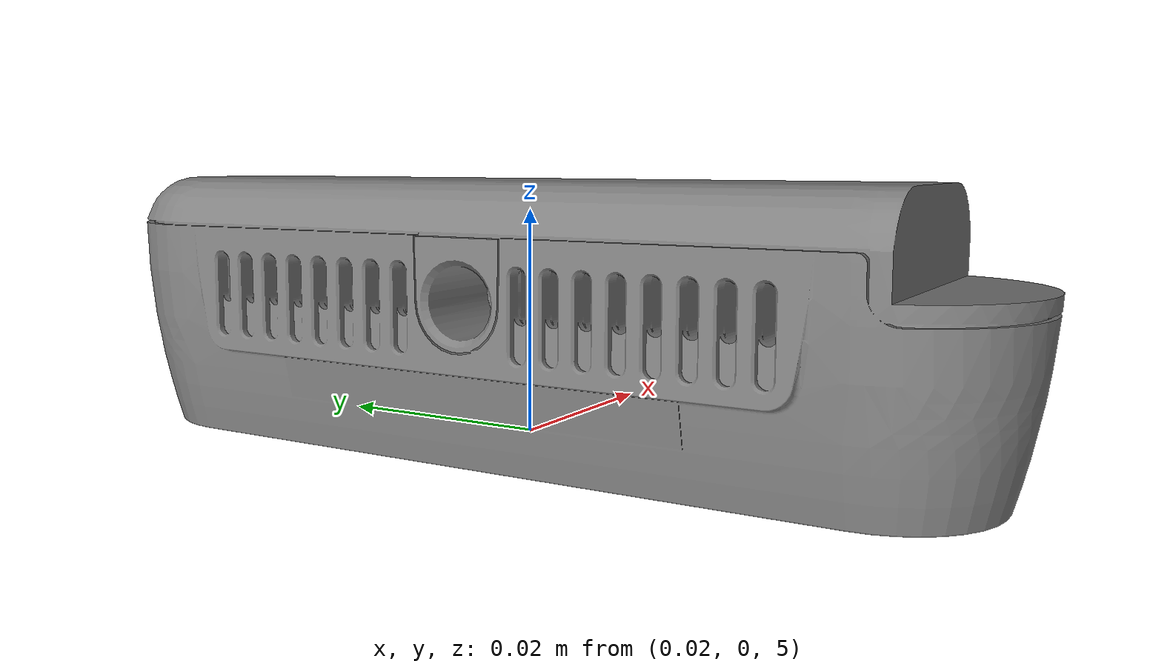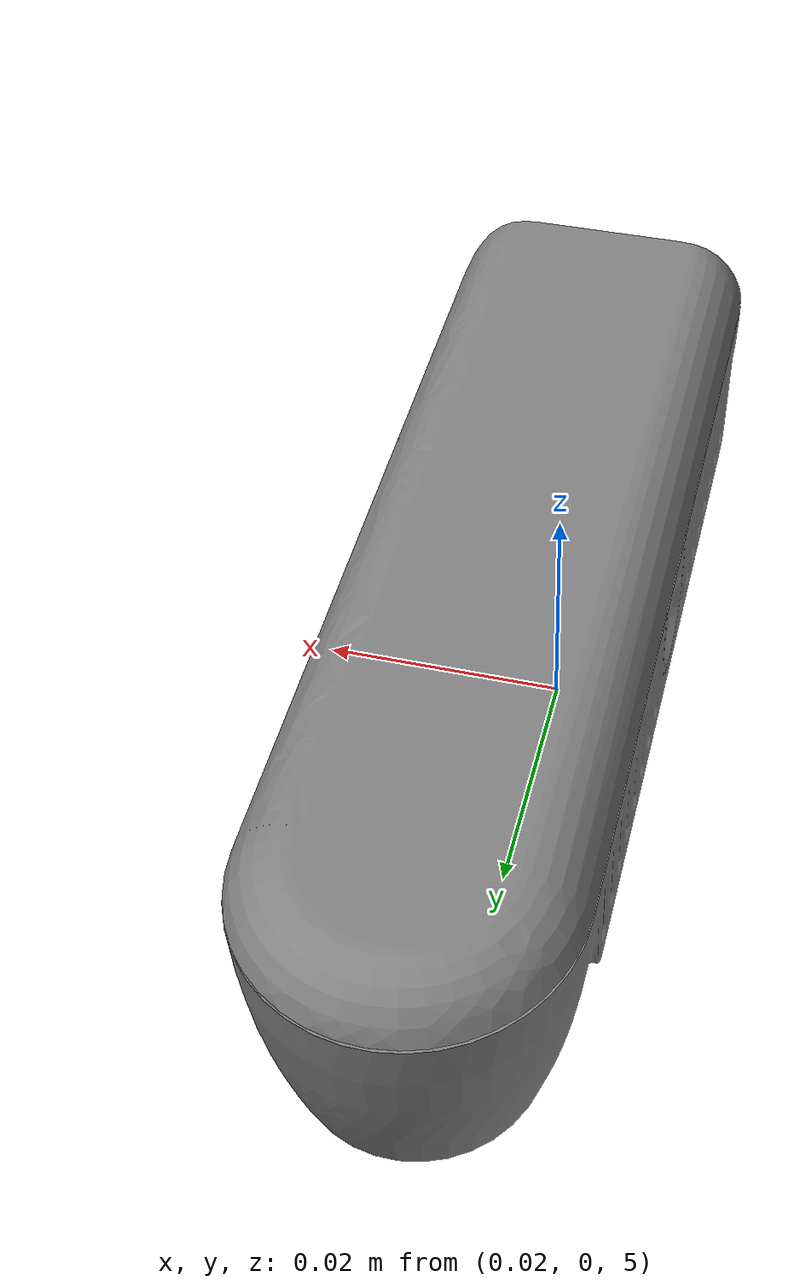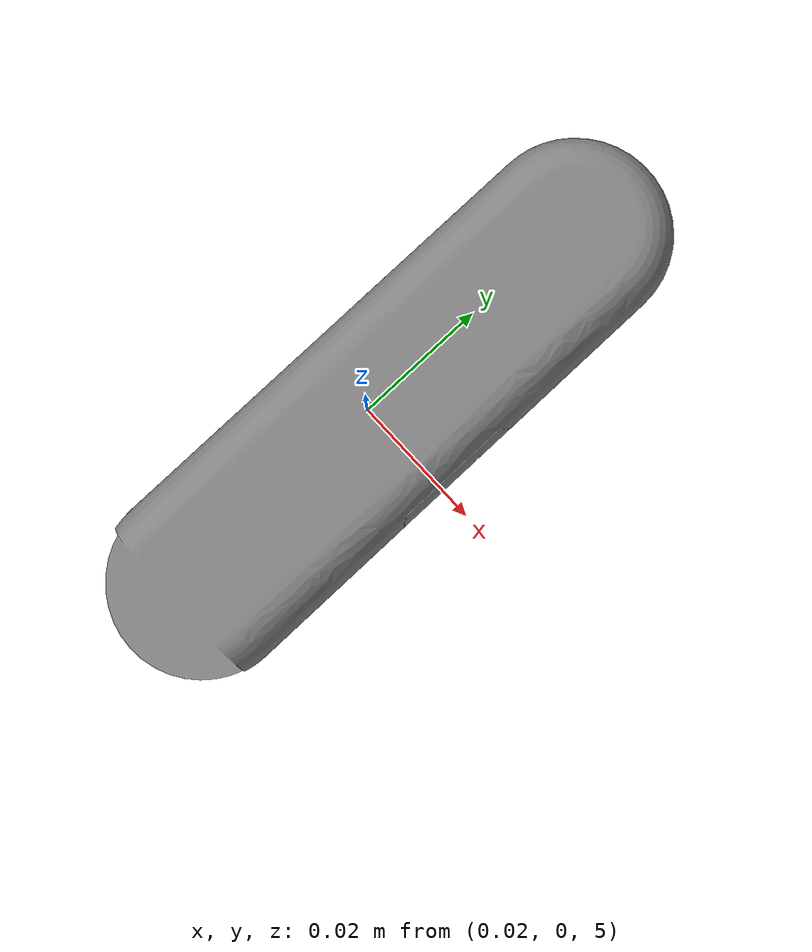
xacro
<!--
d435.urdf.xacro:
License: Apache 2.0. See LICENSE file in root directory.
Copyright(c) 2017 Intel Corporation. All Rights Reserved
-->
<?xml version="1.0"?>
<robot name="realsense2_camera" xmlns:xacro="http://ros.org/wiki/xacro">
  <link name="base_link" >

  </link>
  <xacro:include filename="$(find d435)/tools/d435.urdf.xacro" />
  <xacro:realsense_d435 connected_to="base_link" complett_links="true" ns="" xyz="0.01 0 5" rpy = "0 0 0"/>

</robot>

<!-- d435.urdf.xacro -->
<robot name="realsense_d435" xmlns:xacro="http://ros.org/wiki/xacro">
  <xacro:include filename="$(find d435)/tools/d435.gazebo.xacro" />
  <xacro:property name="complett_links" value="false" />

  <xacro:property name="M_PI" value="3.1415926535897931" />

  <!-- The following values are approximate, and the camera node
   publishing TF values with actual calibrated camera extrinsic values -->
  <xacro:property name="d435_cam_depth_to_left_ir_offset" value="0.0"/>
  <xacro:property name="d435_cam_depth_to_right_ir_offset" value="-0.050"/>
  <xacro:property name="d435_cam_depth_to_color_offset" value="0.015"/>

  <!-- The following values model the aluminum peripherial case for the
    D435 camera, with the camera joint represented by the actual
    peripherial camera tripod mount -->
  <xacro:property name="d435_cam_width" value="0.090"/>
  <xacro:property name="d435_cam_height" value="0.025"/>
  <xacro:property name="d435_cam_depth" value="0.02505"/>
  <xacro:property name="d435_cam_mount_from_center_offset" value="0.0149"/>

  <!-- The following offset is relative the the physical D435 camera peripherial
    camera tripod mount -->
  <xacro:property name="d435_cam_depth_px" value="${d435_cam_mount_from_center_offset}"/>
  <xacro:property name="d435_cam_depth_py" value="0.0175"/>
  <xacro:property name="d435_cam_depth_pz" value="${d435_cam_height/2}"/>

  <material name="Aluminum">
    <color rgba="0.5 0.5 0.5 1"/>
  </material>

  <xacro:macro name="realsense_d435" params="connected_to:='' complett_links='true' ns:='' rpy:='0 0 0' xyz:='0 0 0'">

    <xacro:realsense_d435_tool ns="${ns}"/>
    <!-- camera body, with origin at bottom screw mount -->
    <xacro:unless value="${connected_to == ''}">
      <joint name="${ns}camera_joint" type="fixed">
        <parent link="${connected_to}"/>
        <child link="${ns}camera_link" />

        <origin xyz="${xyz}" rpy="${rpy}"/>
      </joint>
    </xacro:unless>

    <link name="${ns}camera_link">
      <visual>
      <origin xyz="${d435_cam_mount_from_center_offset} 0.0 ${d435_cam_height/2}" rpy="${M_PI/2} 0 ${M_PI/2}"/>
        <geometry>
	      <mesh filename="package://d435/meshes/d435.dae" />
        </geometry>
        <material name="Aluminum"/>
      </visual>
      <collision>
        <origin xyz="0.0 0.0 ${d435_cam_height/2}" rpy="0 0 0"/>
        <geometry>
          <box size="${d435_cam_depth} ${d435_cam_width} ${d435_cam_height}"/>
        </geometry>
      </collision>
      <inertial>
        <!-- The following are not reliable values, and should not be used for modeling -->
        <mass value="0.564" />
        <origin xyz="0 0 0" />
        <inertia ixx="0.003881243" ixy="0.0" ixz="0.0" iyy="0.000498940" iyz="0.0" izz="0.003879257" />
      </inertial>
    </link>

    <!--The following links will be not modeled and displayed.-->
    <xacro:if value="${complett_links}">
      <!-- camera depth joints and links -->
      <joint name="${ns}camera_depth_joint" type="fixed">
        <origin xyz="${d435_cam_depth_px} ${d435_cam_depth_py} ${d435_cam_depth_pz}" rpy="0 0 0"/>
        <parent link="${ns}camera_link"/>
        <child link="${ns}camera_depth_frame" />
      </joint>
      <link name="${ns}camera_depth_frame"/>

      <joint name="${ns}camera_depth_optical_joint" type="fixed">
        <origin xyz="0 0 0" rpy="${-M_PI/2} 0 ${-M_PI/2}" />
        <parent link="${ns}camera_depth_frame" />
        <child link="${ns}camera_depth_optical_frame" />
      </joint>
      <link name="${ns}camera_depth_optical_frame"/>

      <!-- camera left IR joints and links -->
      <joint name="${ns}camera_left_ir_joint" type="fixed">
        <origin xyz="0 ${d435_cam_depth_to_left_ir_offset} 0" rpy="0 0 0" />
        <parent link="${ns}camera_depth_frame" />
        <child link="${ns}camera_left_ir_frame" />
      </joint>
      <link name="${ns}camera_left_ir_frame"/>

      <joint name="${ns}camera_left_ir_optical_joint" type="fixed">
        <origin xyz="0 0 0" rpy="${-M_PI/2} 0 ${-M_PI/2}" />
        <parent link="${ns}camera_left_ir_frame" />
        <child link="${ns}camera_left_ir_optical_frame" />
      </joint>
      <link name="${ns}camera_left_ir_optical_frame"/>

      <!-- camera right IR joints and links -->
      <joint name="${ns}camera_right_ir_joint" type="fixed">
        <origin xyz="0 ${d435_cam_depth_to_right_ir_offset} 0" rpy="0 0 0" />
        <parent link="${ns}camera_depth_frame" />
        <child link="${ns}camera_right_ir_frame" />
      </joint>
      <link name="${ns}camera_right_ir_frame"/>

      <joint name="${ns}camera_right_ir_optical_joint" type="fixed">
        <origin xyz="0 0 0" rpy="${-M_PI/2} 0 ${-M_PI/2}" />
        <parent link="${ns}camera_right_ir_frame" />
        <child link="${ns}camera_right_ir_optical_frame" />
      </joint>
      <link name="${ns}camera_right_ir_optical_frame"/>

      <!-- camera color joints and links -->
      <joint name="${ns}camera_color_joint" type="fixed">
        <origin xyz="0 ${d435_cam_depth_to_color_offset} 0" rpy="0 0 0" />
        <parent link="${ns}camera_depth_frame" />
        <child link="${ns}camera_color_frame" />
      </joint>
      <link name="${ns}camera_color_frame"/>

      <joint name="${ns}camera_color_optical_joint" type="fixed">
        <origin xyz="0 0 0" rpy="${-M_PI/2} 0 ${-M_PI/2}" />
        <parent link="${ns}camera_color_frame" />
        <child link="${ns}camera_color_optical_frame" />
      </joint>
      <link name="${ns}camera_color_optical_frame"/>
    </xacro:if>

   <gazebo reference="${ns}camera_link">
     <material>Gazebo/Black</material>
   </gazebo>

  </xacro:macro>

</robot>
